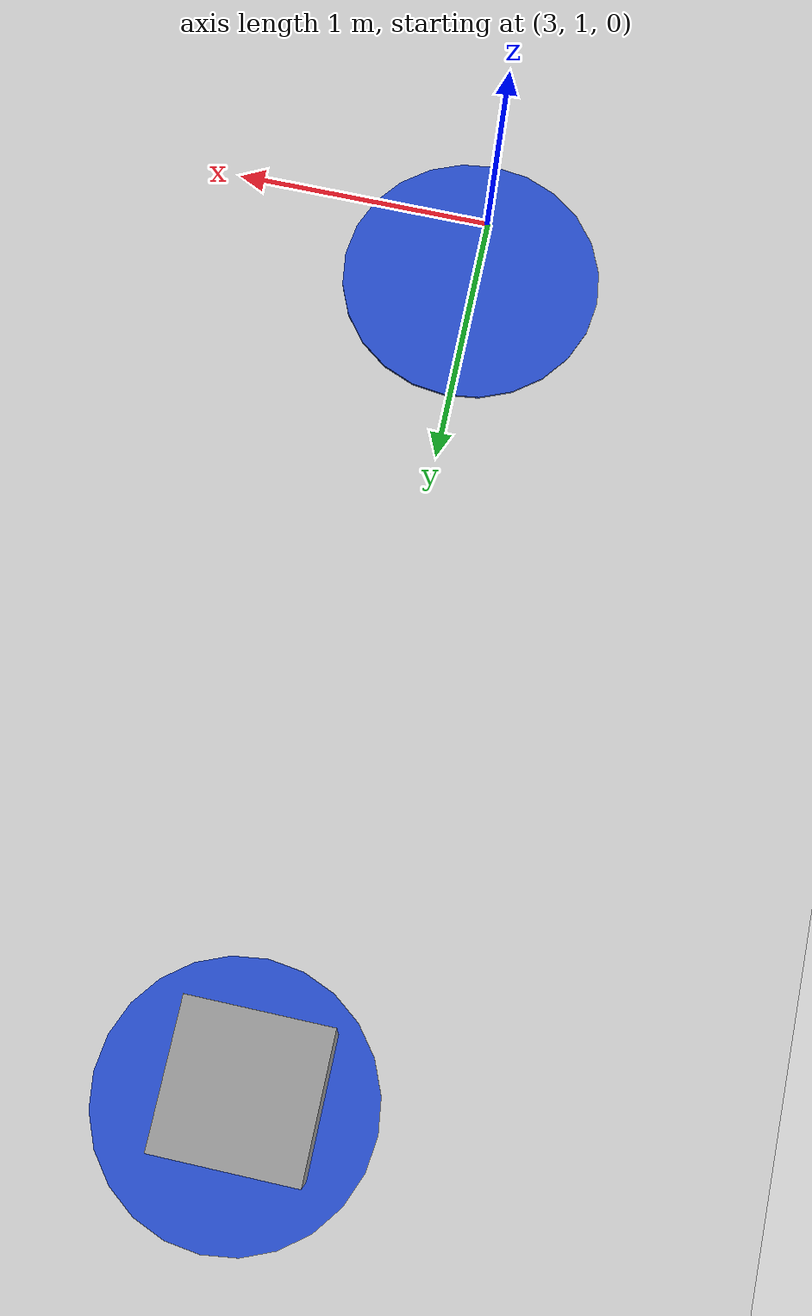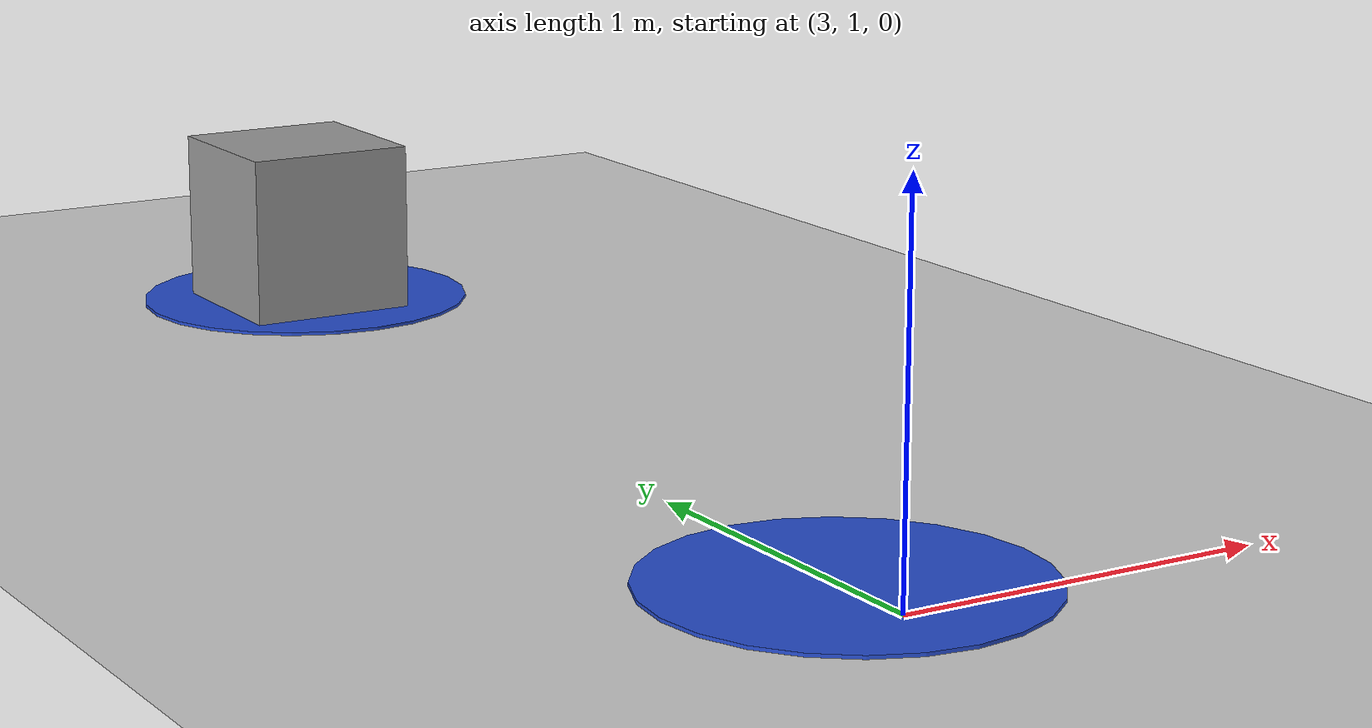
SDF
<sdf version="1.7">
 <world name="default">
  <model name="ground_plane">
   <static>1</static>
   <link name="link">
    <collision name="collision">
     <geometry><plane><normal>0 0 1</normal><size>100 100</size></plane></geometry>
     <surface>
      <contact><collide_bitmask>65535</collide_bitmask></contact>
      <friction><ode><mu>100</mu><mu2>50</mu2></ode></friction>
     </surface>
    </collision>
    <visual name="visual">
     <cast_shadows>0</cast_shadows>
     <geometry><plane><normal>0 0 1</normal><size>100 100</size></plane></geometry>
     <material>
      <script><uri>file://media/materials/scripts/gazebo.material</uri><name>Gazebo/Grey</name></script>
     </material>
    </visual>
   </link>
  </model>
  <model name="Green_Circle">
   <link name="link_0">
    <inertial>
     <mass>1</mass>
     <inertia><ixx>0.145833</ixx><ixy>0</ixy><ixz>0</ixz><iyy>0.145833</iyy><iyz>0</iyz><izz>0.125</izz></inertia>
    </inertial>
    <visual name="visual">
     <geometry><cylinder><radius>0.5</radius><length>0.01</length></cylinder></geometry>
     <material>
      <lighting>1</lighting>
      <script><uri>file://media/materials/scripts/gazebo.material</uri><name>Gazebo/Blue</name></script>
      <shader type="pixel"><normal_map>__default__</normal_map></shader>
      <ambient>0.18 0.761 0.494 1</ambient>
      <diffuse>0.18 0.761 0.494 1</diffuse>
      <specular>0.18 0.761 0.494 1</specular>
      <emissive>0 0 0 1</emissive>
     </material>
    </visual>
    <collision name="collision">
     <geometry><cylinder><radius>0.5</radius><length>0.01</length></cylinder></geometry>
     <surface>
      <friction>
       <ode><mu>1</mu><mu2>1</mu2><fdir1>0 0 0</fdir1><slip1>0</slip1><slip2>0</slip2></ode>
       <torsional>
        <coefficient>1</coefficient>
        <patch_radius>0</patch_radius>
        <surface_radius>0</surface_radius>
        <use_patch_radius>1</use_patch_radius>
        <ode><slip>0</slip></ode>
       </torsional>
      </friction>
      <bounce><restitution_coefficient>0</restitution_coefficient><threshold>1e+06</threshold></bounce>
      <contact>
       <collide_without_contact>0</collide_without_contact>
       <collide_without_contact_bitmask>1</collide_without_contact_bitmask>
       <collide_bitmask>1</collide_bitmask>
       <ode>
        <soft_cfm>0</soft_cfm>
        <soft_erp>0.2</soft_erp>
        <kp>1e+13</kp>
        <kd>1</kd>
        <max_vel>0.01</max_vel>
        <min_depth>0</min_depth>
       </ode>
       <bullet>
        <split_impulse>1</split_impulse>
        <split_impulse_penetration_threshold>-0.01</split_impulse_penetration_threshold>
        <soft_cfm>0</soft_cfm>
        <soft_erp>0.2</soft_erp>
        <kp>1e+13</kp>
        <kd>1</kd>
       </bullet>
      </contact>
     </surface>
    </collision>
   </link>
   <static>1</static>
   <pose>3.18631 4.46804 0 0 -0 0</pose>
  </model>
  <model name="Red_Circle">
   <link name="link_0">
    <inertial>
     <mass>1</mass>
     <inertia><ixx>0.145833</ixx><ixy>0</ixy><ixz>0</ixz><iyy>0.145833</iyy><iyz>0</iyz><izz>0.125</izz></inertia>
    </inertial>
    <visual name="visual">
     <geometry><cylinder><radius>0.5</radius><length>0.01</length></cylinder></geometry>
     <material>
      <lighting>1</lighting>
      <script><uri>file://media/materials/scripts/gazebo.material</uri><name>Gazebo/Blue</name></script>
      <shader type="pixel"><normal_map>__default__</normal_map></shader>
      <ambient>0.753 0.11 0.157 1</ambient>
      <diffuse>0.753 0.11 0.157 1</diffuse>
      <specular>0.753 0.11 0.157 1</specular>
      <emissive>0 0 0 1</emissive>
     </material>
    </visual>
    <collision name="collision">
     <geometry><cylinder><radius>0.5</radius><length>0.01</length></cylinder></geometry>
     <surface>
      <friction>
       <ode><mu>1</mu><mu2>1</mu2><fdir1>0 0 0</fdir1><slip1>0</slip1><slip2>0</slip2></ode>
       <torsional>
        <coefficient>1</coefficient>
        <patch_radius>0</patch_radius>
        <surface_radius>0</surface_radius>
        <use_patch_radius>1</use_patch_radius>
        <ode><slip>0</slip></ode>
       </torsional>
      </friction>
      <bounce><restitution_coefficient>0</restitution_coefficient><threshold>1e+06</threshold></bounce>
      <contact>
       <collide_without_contact>0</collide_without_contact>
       <collide_without_contact_bitmask>1</collide_without_contact_bitmask>
       <collide_bitmask>1</collide_bitmask>
       <ode>
        <soft_cfm>0</soft_cfm>
        <soft_erp>0.2</soft_erp>
        <kp>1e+13</kp>
        <kd>1</kd>
        <max_vel>0.01</max_vel>
        <min_depth>0</min_depth>
       </ode>
       <bullet>
        <split_impulse>1</split_impulse>
        <split_impulse_penetration_threshold>-0.01</split_impulse_penetration_threshold>
        <soft_cfm>0</soft_cfm>
        <soft_erp>0.2</soft_erp>
        <kp>1e+13</kp>
        <kd>1</kd>
       </bullet>
      </contact>
     </surface>
    </collision>
   </link>
   <static>1</static>
   <pose>3.01972 1.24629 0 0 -0 0</pose>
  </model>
  <model name="box_final1">
   <link name="link_1">
    <inertial>
     <mass>10</mass>
     <inertia>
      <ixx>0.416667</ixx>
      <ixy>0</ixy>
      <ixz>0</ixz>
      <iyy>0.416667</iyy>
      <iyz>0</iyz>
      <izz>0.416667</izz>
     </inertia>
    </inertial>
    <pose>1e-06 -5e-06 0 0 -0 0</pose>
    <visual name="visual">
     <geometry><box><size>0.5 0.5 0.5</size></box></geometry>
     <material>
      <lighting>1</lighting>
      <script><uri>file://media/materials/scripts/gazebo.material</uri><name>Gazebo/Grey</name></script>
      <shader type="pixel"><normal_map>__default__</normal_map></shader>
      <ambient>0.3 0.3 0.3 1</ambient>
      <diffuse>0.7 0.7 0.7 1</diffuse>
      <specular>0.01 0.01 0.01 1</specular>
      <emissive>0 0 0 1</emissive>
     </material>
    </visual>
    <collision name="collision">
     <geometry><box><size>0.5 0.5 0.5</size></box></geometry>
     <surface>
      <friction>
       <ode><mu>1</mu><mu2>1</mu2><fdir1>0 0 0</fdir1><slip1>0</slip1><slip2>0</slip2></ode>
       <torsional>
        <coefficient>1</coefficient>
        <patch_radius>0</patch_radius>
        <surface_radius>0</surface_radius>
        <use_patch_radius>1</use_patch_radius>
        <ode><slip>0</slip></ode>
       </torsional>
      </friction>
      <bounce><restitution_coefficient>0</restitution_coefficient><threshold>1e+06</threshold></bounce>
      <contact>
       <collide_without_contact>0</collide_without_contact>
       <collide_without_contact_bitmask>1</collide_without_contact_bitmask>
       <collide_bitmask>1</collide_bitmask>
       <ode>
        <soft_cfm>0</soft_cfm>
        <soft_erp>0.2</soft_erp>
        <kp>1e+13</kp>
        <kd>1</kd>
        <max_vel>0.01</max_vel>
        <min_depth>0</min_depth>
       </ode>
       <bullet>
        <split_impulse>1</split_impulse>
        <split_impulse_penetration_threshold>-0.01</split_impulse_penetration_threshold>
        <soft_cfm>0</soft_cfm>
        <soft_erp>0.2</soft_erp>
        <kp>1e+13</kp>
        <kd>1</kd>
       </bullet>
      </contact>
     </surface>
    </collision>
   </link>
   <static>0</static>
   <pose>3.14106 4.41666 0.255 1.1e-05 -5e-06 3e-06</pose>
  </model>
 </world>
</sdf>
